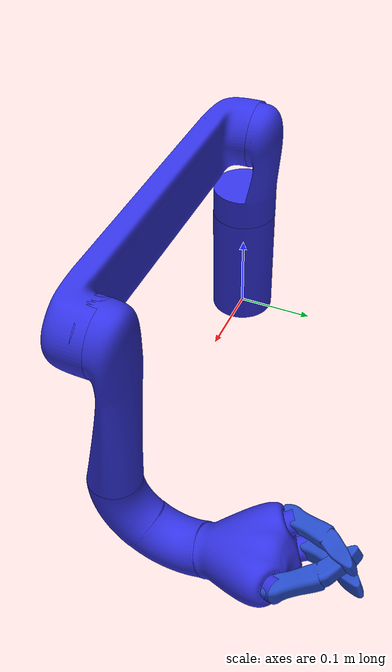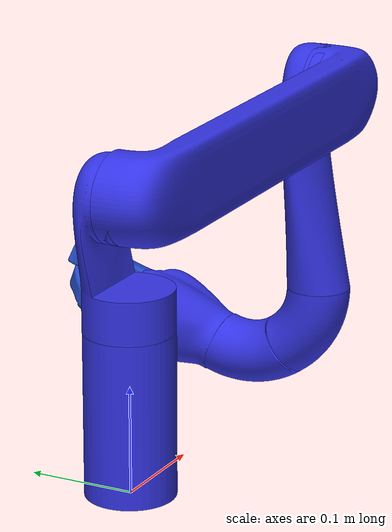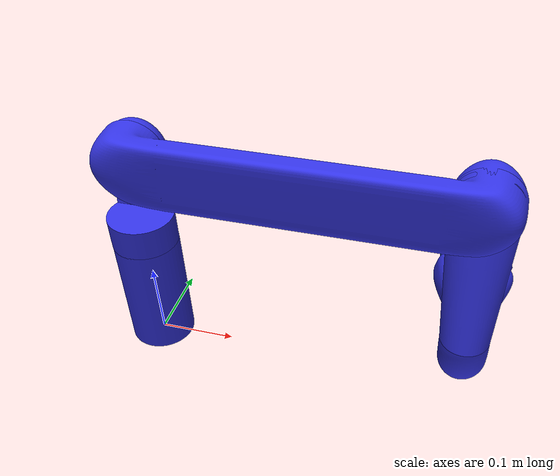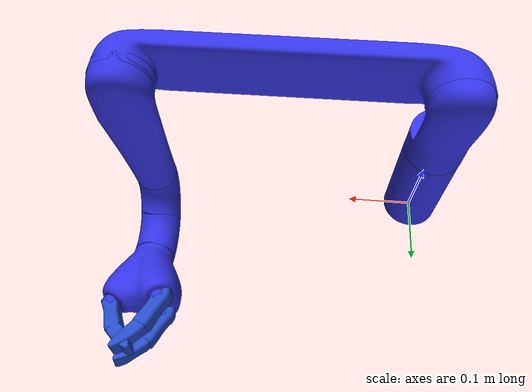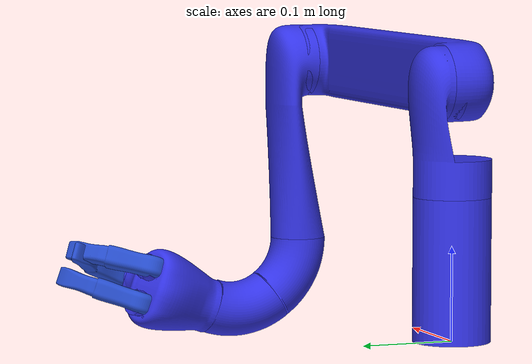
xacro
<?xml version="1.0"?>
<robot
	xmlns:xacro="http://ros.org/wiki/xacro"
	name="jaco">

	<xacro:macro name="jaco_arm_v0" params="name parent *origin">

      <!-- The base joint & link -->
      <joint name="${name}_base_joint" type="fixed">
        <insert_block name="origin" />
        <parent link="${parent}"/>
        <child link="${name}_base_link"/>
      </joint>

    </xacro:macro>

	<xacro:include filename="$(find jaco_description)/urdf/gazebo/jaco.urdf.xacro" />

</robot>

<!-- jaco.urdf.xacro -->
<robot name="jaco"
  xmlns:xacro="http://ros.org/wiki/xacro">

 <xacro:property name="inertia" value="1" />
  <xacro:property name="finger_inertia" value="1" />

  <xacro:property name="PI" value="3.1415926535897931" />

	<gazebo>

    <plugin name="gazebo_ros_controller_manager" filename="libgazebo_ros_controller_manager.so">
      <alwaysOn>true</alwaysOn>
		<updateRate>1000.0</updateRate>
		<robotParam>robot_description</robotParam>

    </plugin>
	</gazebo>

	<xacro:include filename="$(find jaco_description)/urdf/gazebo/jaco.gazebo.xacro" />
	<xacro:include filename="$(find jaco_description)/urdf/gazebo/jaco.transmissions.xacro" />

	<material name="JacoGrey">
	<color rgba="0.2 0.2 0.9 1.0"/>
	</material>

	<!-- The base joint & link -->

	<link name="jaco_base_link">
		<inertial>
			<mass value="1" />
			<!--origin xyz="0 0 -0.0525" rpy="0 0 0"/-->
          		<origin xyz="0 0 0.0" rpy="0 0 0"/>
			<inertia ixx="${inertia}"  ixy="0"  ixz="0" iyy="${inertia}" iyz="0" izz="${inertia}" />
		</inertial>
		<visual>
			<material name="JacoGrey" />
			<!--origin xyz="0 0 -0.0525" rpy="0 0 0"/-->
			<geometry>
				<mesh filename="package://jaco_description/meshes/joint_1.stl"
				scale="0.001 0.001 0.001"/>
			</geometry>
		</visual>
		<collision>
			<!--origin xyz="0 0 -0.0525" rpy="0 0 0"/-->
			<geometry>
				<mesh filename="package://jaco_description/meshes/joint_1.stl"
				scale="0.001 0.001 0.001"/>
			</geometry>
		</collision>
	</link>
	<gazebo reference="jaco_base_link">
		<material>Gazebo/Yellow</material>
		<turnGravityOff>true</turnGravityOff>
	</gazebo>

	<!-- First revolute joint & link -->

	<joint name="jaco_joint_1" type="continuous">
		<!--origin xyz="0 0 0.2102" rpy="0 0 0"/-->
        	<origin xyz="0 0 0.2725" rpy="0 0 0"/>
		<axis xyz="0 0 -1" rpy="0 0 0"/>
		<parent link="jaco_base_link"/>
		<child link="jaco_link_1"/>
		<limit effort="30" velocity="5"/>
	</joint>
	<link name="jaco_link_1">
		<inertial>
			<mass value="1" />

			<inertia ixx="${inertia}"  ixy="0"  ixz="0" iyy="${inertia}" iyz="0" izz="${inertia}" />
			<origin/>
		</inertial>
		<visual>
			<material name="JacoGrey" />
			<origin xyz="0 0 -0.12" rpy="0 0 -1.570796327"/>
			<geometry>
				<mesh filename="package://jaco_description/meshes/joint_2.stl"
				scale="0.001 0.001 0.001"/>
			</geometry>
		</visual>
		<collision>
			<origin xyz="0 0 -0.12" rpy="0 0 -1.570796327"/>
			<geometry>
				<mesh filename="package://jaco_description/meshes/joint_2.stl"
				scale="0.001 0.001 0.001"/>
			</geometry>
		</collision>
	</link>
	<gazebo reference="jaco_link_1">
		<material>Gazebo/Red</material>
		<turnGravityOff>true</turnGravityOff>
	</gazebo>

	<!-- Second revolute joint & link -->

	<joint name="jaco_joint_2" type="continuous">
		<origin xyz="0 0 0" rpy="-1.570796327 0 0"/>
		<axis xyz="0 0 1"/>
		<parent link="jaco_link_1"/>
		<child link="jaco_link_2"/>
		<limit effort="30" velocity="5"/>
	</joint>
	<link name="jaco_link_2">
		<inertial>
			<mass value="1" />
			<inertia ixx="${inertia}"  ixy="0"  ixz="0" iyy="${inertia}" iyz="0" izz="${inertia}" />
			<origin/>
		</inertial>
		<visual>
			<material name="JacoGrey" />
			<origin xyz="0 0 0.015" rpy="0 1.570796327 0"/>
			<geometry>
				<mesh filename="package://jaco_description/meshes/joint_3.stl"
				scale="0.001 0.001 0.001"/>
			</geometry>
		</visual>
		<collision>
			<origin xyz="0 0 0.015" rpy="0 1.570796327 0"/>
			<geometry>
				<mesh filename="package://jaco_description/meshes/joint_3.stl"
				scale="0.001 0.001 0.001"/>
			</geometry>
		</collision>
	</link>
	<gazebo reference="jaco_link_2">
		<material>Gazebo/Blue</material>
		<turnGravityOff>true</turnGravityOff>
	</gazebo>

	<!-- Third revolute joint & link -->

	<joint name="jaco_joint_3" type="continuous">
		<origin xyz="0.4100 0 0.012" rpy="0 0 0"/>
		<axis xyz="0 0 -1"/>
		<parent link="jaco_link_2"/>
		<child link="jaco_link_3"/>
		<limit effort="30" velocity="5"/>
	</joint>
	<link name="jaco_link_3">
		<inertial>
			<mass value="1" />
			<inertia ixx="${inertia}"  ixy="0"  ixz="0" iyy="${inertia}" iyz="0" izz="${inertia}" />
			<origin/>
		</inertial>
		<visual>
			<material name="JacoGrey" />
			<origin xyz="0 0 -0.012" rpy="0 1.570796327 1.570796327"/>
			<geometry>
				<mesh filename="package://jaco_description/meshes/joint_4.stl"
				scale="1.000 1.000 1.000"/>
			</geometry>
		</visual>
		<collision>
			<origin xyz="0 0 -0.012" rpy="0 1.570796327 1.570796327"/>
			<geometry>
				<mesh filename="package://jaco_description/meshes/joint_4.stl"
				scale="1.000 1.000 1.000"/>
			</geometry>
		</collision>
	</link>
	<gazebo reference="jaco_link_3">
		<material>Gazebo/Red</material>
		<turnGravityOff>true</turnGravityOff>
	</gazebo>

	<!-- Fourth revolute joint & link -->
	<joint name="jaco_joint_4" type="continuous">
		<origin xyz="0 0.24927682300748782 0 " rpy="-1.570796327 0 0"/>
		<axis xyz="0 0 -1"/>
		<parent link="jaco_link_3"/>
		<child link="jaco_link_4"/>
		<limit effort="30" velocity="5"/>
	</joint>
	<link name="jaco_link_4">
		<inertial>
			<mass value="1" />
			<inertia ixx="${inertia}"  ixy="0"  ixz="0" iyy="${inertia}" iyz="0" izz="${inertia}" />
			<origin/>
		</inertial>
		<visual>
			<material name="JacoGrey" />
			<origin xyz="0 0 -0.042276823" rpy="0 0 -1.570796327"/>
			<geometry>
				<mesh filename="package://jaco_description/meshes/joint_5.stl"
				scale="0.001 0.001 0.001"/>
			</geometry>
		</visual>
		<collision>
			<origin xyz="0 0 -0.042276823" rpy="0 0 -1.570796327"/>
			<geometry>
				<mesh filename="package://jaco_description/meshes/joint_5.stl"
				scale="0.001 0.001 0.001"/>
			</geometry>
		</collision>
	</link>
	<gazebo reference="jaco_link_4">
		<material>Gazebo/Blue</material>
		<turnGravityOff>true</turnGravityOff>
	</gazebo>

	<!-- Fifth revolute joint & link -->
	<joint name="jaco_joint_5" type="continuous">
		<origin xyz="0 -0.069262292 0.048497979" rpy="0.959931089 0 0"/>
		<axis xyz="0 0 -1"/>
		<parent link="jaco_link_4"/>
		<child link="jaco_link_5"/>
		<limit effort="30" velocity="5"/>
	</joint>
	<link name="jaco_link_5">
		<inertial>
			<mass value="1.0"/>
			<inertia ixx="${inertia}"  ixy="0"  ixz="0" iyy="${inertia}" iyz="0" izz="${inertia}" />
			<origin/>
		</inertial>
		<visual>
			<material name="JacoGrey" />
			<origin xyz="0 0 -0.042276823" rpy="0 -0.959931089 1.570796327"/>
			<geometry>
				<mesh filename="package://jaco_description/meshes/joint_6.stl"
				scale="0.001 0.001 0.001"/>
			</geometry>
		</visual>
		<collision>
			<origin xyz="0 0 -0.042276823" rpy="0 -0.959931089 1.570796327"/>
			<geometry>
				<mesh filename="package://jaco_description/meshes/joint_6.stl"
				scale="0.001 0.001 0.001"/>
			</geometry>
		</collision>
	</link>
	<gazebo reference="jaco_link_5">
		<material>Gazebo/Red</material>
		<turnGravityOff>true</turnGravityOff>
	</gazebo>

	<!-- Sixth revolute joint & link -->
	<joint name="jaco_joint_6" type="revolute">
		<!--origin xyz="0 -0.186174274 0.13036063" rpy="0.959931089 0 0"/-->
		<origin xyz="0 -0.186174274 0.13036063" rpy="-0.959931089 0 3.1415926535897931"/>
		<axis xyz="0 0 -1"/>
		<parent link="jaco_link_5"/>
		<child link="jaco_link_6"/>
		<limit lower="${-PI}" upper="${PI}" effort="30" velocity="5"/>
	</joint>
	<link name="jaco_link_6">
		<inertial>
			<mass value="0.3"/>
			<inertia ixx="${inertia}"  ixy="0"  ixz="0" iyy="${inertia}" iyz="0" izz="${inertia}" />
			<origin/>
		</inertial>
		<visual>
			<material name="JacoGrey" />
			<origin xyz="0 0 -0.1850" rpy="0 0 -3.1415926535897931"/>
			<geometry>
				<mesh filename="package://jaco_description/meshes/hand_with_noFinger.stl"
				scale="0.001 0.001 0.001"/>
			</geometry>
		</visual>
		<collision>
			<origin xyz="0 0 -0.1850" rpy="0 0 -3.1415926535897931"/>
			<geometry>
				<mesh filename="package://jaco_description/meshes/hand_with_noFinger.stl"
				scale="0.001 0.001 0.001"/>
			</geometry>
		</collision>
	</link>
	<gazebo reference="jaco_link_6">
		<material>Gazebo/Blue</material>
		<turnGravityOff>true</turnGravityOff>
	</gazebo>

     <joint name="jaco_gripper_tool_frame_joint" type="fixed">
      <parent link="jaco_link_6"/>
      <child link="jaco_gripper_tool_frame" />
      <origin xyz="0 0 -0.08" rpy="0.17 ${-3.141592654/2} ${3.141592654/2}"/>
    </joint>

    <link name="jaco_gripper_tool_frame">
      <!-- This is the coordinate system of the tool (this is the position
         used in IK etc., relative to the base frame); there is no actual
         arm part attached to this link -->
  </link>

	<!-- first finger joint & link -->
   	<joint name="jaco_finger_joint_1" type="revolute">
        <!--origin xyz="-0.036 -0.021 -0.07" rpy="0 0 0"/--> <!-- changed becuase it look funny in simulation-->
        <origin xyz="0.036 -0.021 -0.09" rpy="0 0 ${PI}"/>
        <axis xyz="0 1 0"/>
        <parent link="jaco_link_6"/>
        <child link="jaco_finger_link_1"/>
		<limit lower="0.004" upper="1.044" effort="30" velocity="5"/>
      </joint>

    <link name="jaco_finger_link_1">
		<inertial>
			<mass value="0.05"/>
			<inertia ixx="${finger_inertia}"  ixy="0"  ixz="0" iyy="${finger_inertia}" iyz="0" izz="${finger_inertia}" />
			<origin/>
		</inertial>

   <visual>
			<origin xyz="0 0 0" rpy="0 0 0"/>
          <geometry>
            <mesh filename="package://jaco_description/meshes/finger.stl"
                scale="1.1 1.1 1.1"/>
          </geometry>
    </visual>

	<collision>
			<origin xyz="0 0 0" rpy="0 0 0"/>
	<geometry>
        <mesh filename="package://jaco_description/meshes/finger.stl"
                scale="1.1 1.1 1.1"/>
	</geometry>

	</collision>

      </link>
	<gazebo reference="jaco_finger_link_1">
		<material>Gazebo/Blue</material>
		<turnGravityOff>true</turnGravityOff>
	</gazebo>

	<!-- second finger joint & link -->
   	<joint name="jaco_finger_joint_2" type="revolute">
        <!--origin xyz="-0.036 0.021 -0.07" rpy="0 0 0"/-->
	<origin xyz="0.036 0.021 -0.09" rpy="0 0 ${PI + 0.23}"/>
        <axis xyz="0 1 0"/>
        <parent link="jaco_link_6"/>
        <child link="jaco_finger_link_2"/>
		<limit lower="0.004" upper="1.044" effort="30" velocity="5"/>
      </joint>
      <link name="jaco_finger_link_2">
		<inertial>
			<mass value="0.05"/>
			<inertia ixx="${finger_inertia}"  ixy="0"  ixz="0" iyy="${finger_inertia}" iyz="0" izz="${finger_inertia}" />
			<origin/>
		</inertial>
        <visual>
			<origin xyz="0 0 0" rpy="0 0 0"/>
          <geometry>
            <mesh filename="package://jaco_description/meshes/finger.stl"
                scale="1.1 1.1 1.1"/>
          </geometry>
        </visual>
	<collision>
			<origin xyz="0 0 0" rpy="0 0 0"/>
	<geometry>
            <mesh filename="package://jaco_description/meshes/finger.stl"
                scale="1.1 1.1 1.1"/>
	</geometry>
	</collision>
        </link>
	<gazebo reference="jaco_finger_link_2">
		<material>Gazebo/Blue</material>
		<turnGravityOff>true</turnGravityOff>
	</gazebo>

	<!-- third finger joint & link -->
   	<joint name="jaco_finger_joint_3" type="revolute">
        <!--origin xyz="0.036 -0 -0.07" rpy="0 0 3.14"/-->
	<origin xyz="-0.036 -0 -0.09" rpy="0 0 0.23"/>
        <axis xyz="0 1 0"/>
        <parent link="jaco_link_6"/>
        <child link="jaco_finger_link_3"/>
		<limit lower="0.004" upper="1.044" effort="30" velocity="5"/>
      </joint>
      <link name="jaco_finger_link_3">
		<inertial>
			<mass value="0.05"/>
			<inertia ixx="${finger_inertia}"  ixy="0"  ixz="0" iyy="${finger_inertia}" iyz="0" izz="${finger_inertia}" />
			<origin/>
		</inertial>
        <visual>
			<origin xyz="0 0 0" rpy="0 0 0"/>
          <geometry>
            <mesh filename="package://jaco_description/meshes/finger.stl"
                scale="1.1 1.1 1.1"/>
          </geometry>
        </visual>
	<collision>
			<origin xyz="0 0 0" rpy="0 0 0"/>
	<geometry>
            <mesh filename="package://jaco_description/meshes/finger.stl"
                scale="1.1 1.1 1.1"/>
	</geometry>
	</collision>
      </link>
	<gazebo reference="jaco_finger_link_3">
		<material>Gazebo/Blue</material>
		<turnGravityOff>true</turnGravityOff>
	</gazebo>

</robot>
